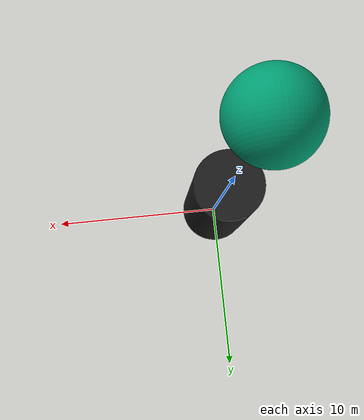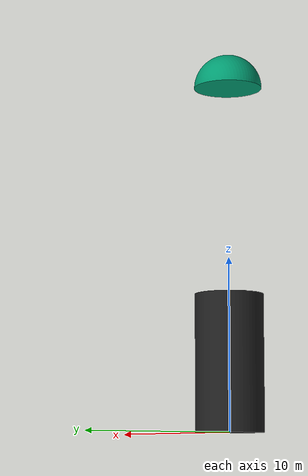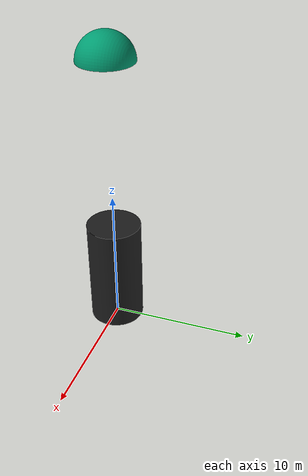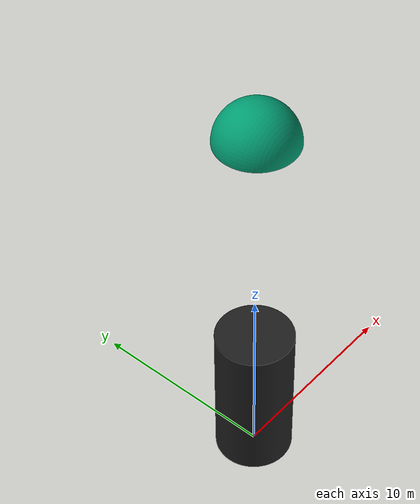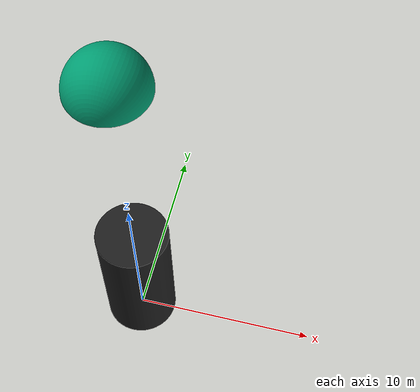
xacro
<?xml version="1.0" ?>
<robot name="turtlebot3_burger" xmlns:xacro="http://ros.org/wiki/xacro">

  <link name="base_footprint"/>

  <joint name="base_joint" type="fixed">
    <parent link="base_footprint"/>
    <child link="base_link"/>
    <origin xyz="0.0 0.0 0" rpy="0 0 0"/>
  </joint>

  <link name="base_link">
    <visual>
      <origin xyz="0 0 0.0" rpy="0 0 0"/>
      <geometry>
        <mesh filename="package://turtlebot3_description/meshes/bases/cyliner.stl" scale="1 1 1"/>
      </geometry>
      <material name="light_black"/>
    </visual>

    <collision>
      <origin xyz="0 0 200" rpy="0 0 0"/>
      <geometry>
        <box size="100 100 200"/>
      </geometry>
    </collision>

  </link>

  <joint name="semi_sphere_joint" type="fixed">
    <parent link="base_link"/>
    <child link="semi_sphere_link"/>
    <origin xyz="0 0 10" rpy="0 0 1.57"/>
    <axis xyz="0 0 1"/>
  </joint>

  <link name="semi_sphere_link">
    <visual>
      <origin xyz="0 0 10" rpy="0 0 1.57"/>
      <geometry>
        <mesh filename="package://turtlebot3_description/meshes/bases/semi_sphere.stl" scale="1 1 1"/>
      </geometry>
      <material name="dark"/>
    </visual>

    <collision>
      <origin xyz="0 0 10" rpy="0 0 0"/>
      <geometry>
        <cylinder length="10" radius="5"/>
      </geometry>
    </collision>

  </link>

</robot>
